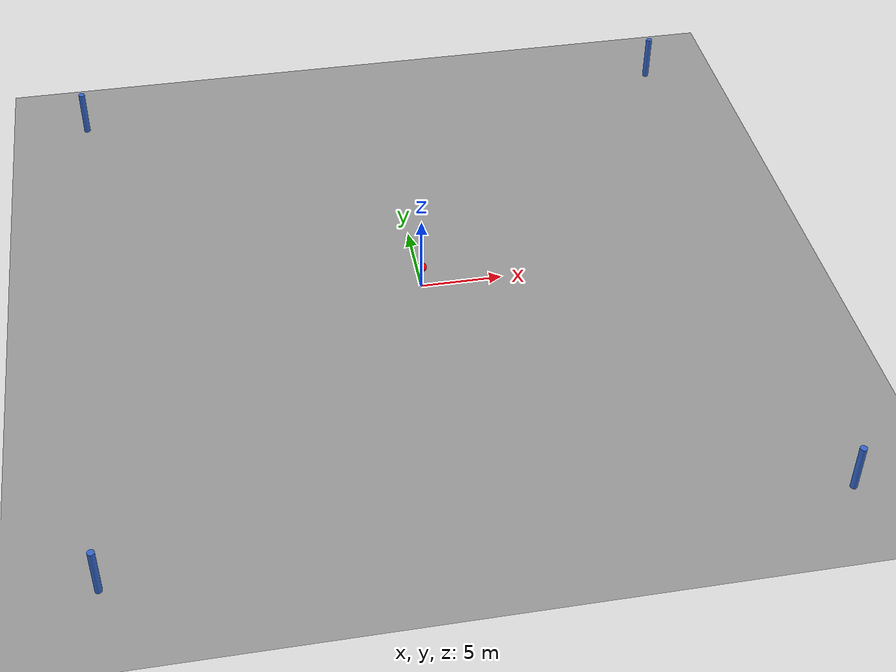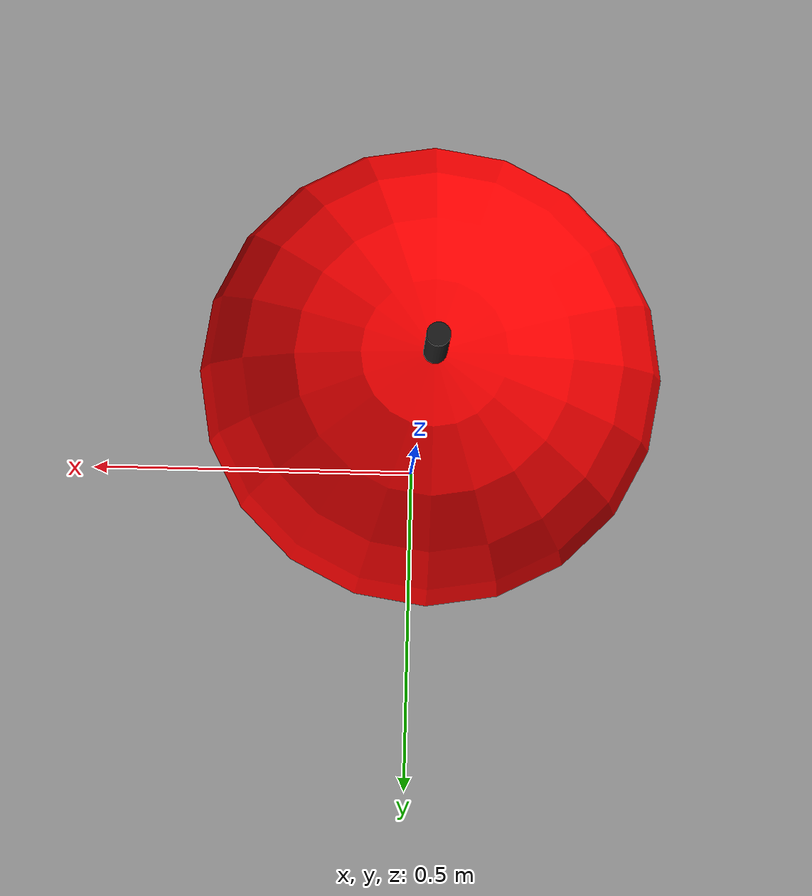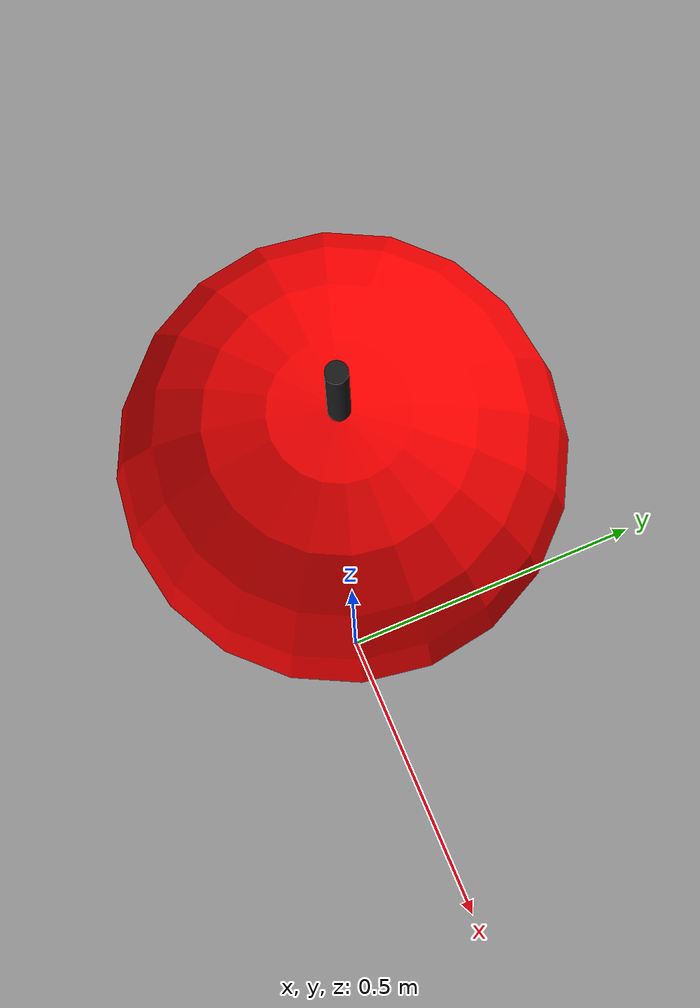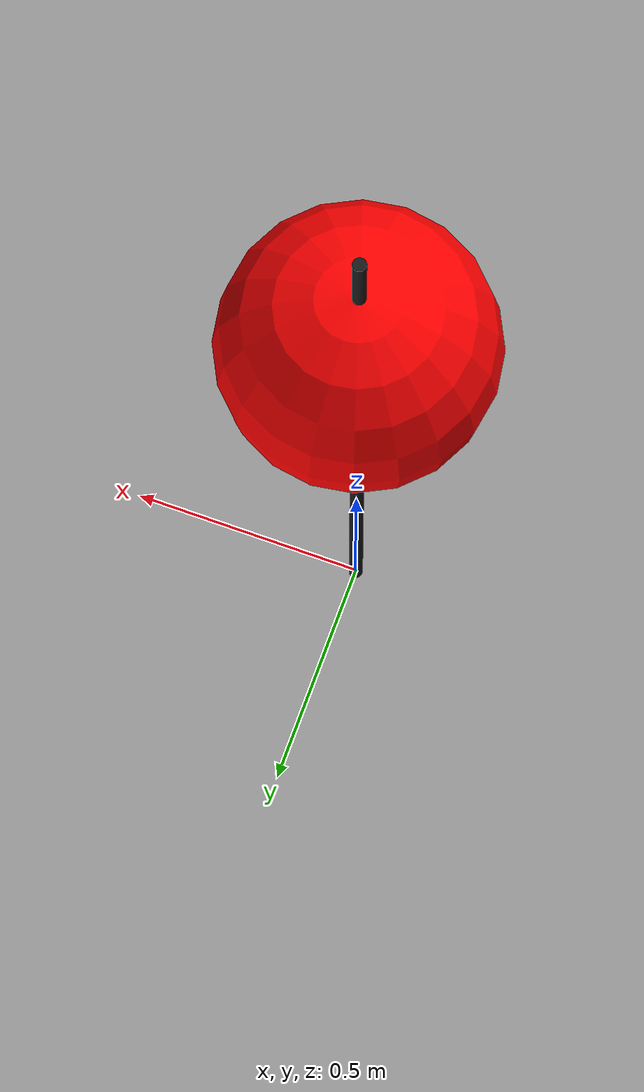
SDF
<?xml version="1.0" ?>
<sdf version="1.9">
  <world name="wirehawk_world_40x40_3m">

    <!-- Physics Configuration -->
    <physics name="1ms" type="ignored">
      <max_step_size>0.001</max_step_size>
      <real_time_factor>1.0</real_time_factor>
    </physics>
    <plugin filename="gz-sim-physics-system" name="gz::sim::systems::Physics"/>
    <plugin filename="gz-sim-user-commands-system" name="gz::sim::systems::UserCommands"/>
    <plugin filename="gz-sim-scene-broadcaster-system" name="gz::sim::systems::SceneBroadcaster"/>

    <!-- Environment & Lighting -->
    <scene>
      <ambient>0.5 0.5 0.5 1.0</ambient>
      <background>0.7 0.8 0.95 1.0</background>
      <grid>true</grid>
    </scene>

    <light type="directional" name="sun">
      <cast_shadows>true</cast_shadows>
      <pose>0 0 10 0 0 0</pose>
      <diffuse>0.8 0.8 0.8 1</diffuse>
      <direction>-0.5 0.1 -0.9</direction>
    </light>

    <!-- Ground Plane (Roof) -->
    <model name="roof">
      <static>true</static>
      <link name="link">
        <collision name="collision">
          <geometry><plane><normal>0 0 1</normal><size>50 50</size></plane></geometry>
        </collision>
        <visual name="visual">
          <geometry><plane><normal>0 0 1</normal><size>50 50</size></plane></geometry>
          <material>
            <ambient>0.6 0.6 0.6 1</ambient>
            <diffuse>0.6 0.6 0.6 1</diffuse>
          </material>
        </visual>
      </link>
    </model>

    <!-- Pillar 1 (Top Right) -->
    <model name="pillar_1">
      <static>true</static>
      <pose>20 20 1.5 0 0 0</pose>
      <link name="link">
        <visual name="visual">
          <geometry><cylinder><radius>0.2</radius><length>3.0</length></cylinder></geometry>
          <material><ambient>0.2 0.4 0.8 1</ambient><diffuse>0.2 0.4 0.8 1</diffuse></material>
        </visual>
      </link>
    </model>

    <!-- Pillar 2 (Bottom Right) -->
    <model name="pillar_2">
      <static>true</static>
      <pose>20 -20 1.5 0 0 0</pose>
      <link name="link">
        <visual name="visual">
          <geometry><cylinder><radius>0.2</radius><length>3.0</length></cylinder></geometry>
          <material><ambient>0.2 0.4 0.8 1</ambient><diffuse>0.2 0.4 0.8 1</diffuse></material>
        </visual>
      </link>
    </model>

    <!-- Pillar 3 (Bottom Left) -->
    <model name="pillar_3">
      <static>true</static>
      <pose>-20 -20 1.5 0 0 0</pose>
      <link name="link">
        <visual name="visual">
          <geometry><cylinder><radius>0.2</radius><length>3.0</length></cylinder></geometry>
          <material><ambient>0.2 0.4 0.8 1</ambient><diffuse>0.2 0.4 0.8 1</diffuse></material>
        </visual>
      </link>
    </model>

    <!-- Pillar 4 (Top Left) -->
    <model name="pillar_4">
      <static>true</static>
      <pose>-20 20 1.5 0 0 0</pose>
      <link name="link">
        <visual name="visual">
          <geometry><cylinder><radius>0.2</radius><length>3.0</length></cylinder></geometry>
          <material><ambient>0.2 0.4 0.8 1</ambient><diffuse>0.2 0.4 0.8 1</diffuse></material>
        </visual>
      </link>
    </model>

    <!-- 4 Visual Cable Models: Length 32m -->

    <!-- The Payload (Point Mass) -->

    <model name="cable_vis_0_0">
      <static>true</static>
      <link name="link">
        <visual name="v">
          <geometry><cylinder><radius>0.015</radius><length>4.0</length></cylinder></geometry>
          <material><ambient>0.1 0.1 0.1 1</ambient><diffuse>0.1 0.1 0.1 1</diffuse></material>
        </visual>
      </link>
    </model>

    <model name="cable_vis_0_1">
      <static>true</static>
      <link name="link">
        <visual name="v">
          <geometry><cylinder><radius>0.015</radius><length>4.0</length></cylinder></geometry>
          <material><ambient>0.1 0.1 0.1 1</ambient><diffuse>0.1 0.1 0.1 1</diffuse></material>
        </visual>
      </link>
    </model>

    <model name="cable_vis_0_2">
      <static>true</static>
      <link name="link">
        <visual name="v">
          <geometry><cylinder><radius>0.015</radius><length>4.0</length></cylinder></geometry>
          <material><ambient>0.1 0.1 0.1 1</ambient><diffuse>0.1 0.1 0.1 1</diffuse></material>
        </visual>
      </link>
    </model>

    <model name="cable_vis_0_3">
      <static>true</static>
      <link name="link">
        <visual name="v">
          <geometry><cylinder><radius>0.015</radius><length>4.0</length></cylinder></geometry>
          <material><ambient>0.1 0.1 0.1 1</ambient><diffuse>0.1 0.1 0.1 1</diffuse></material>
        </visual>
      </link>
    </model>

    <model name="cable_vis_0_4">
      <static>true</static>
      <link name="link">
        <visual name="v">
          <geometry><cylinder><radius>0.015</radius><length>4.0</length></cylinder></geometry>
          <material><ambient>0.1 0.1 0.1 1</ambient><diffuse>0.1 0.1 0.1 1</diffuse></material>
        </visual>
      </link>
    </model>

    <model name="cable_vis_0_5">
      <static>true</static>
      <link name="link">
        <visual name="v">
          <geometry><cylinder><radius>0.015</radius><length>4.0</length></cylinder></geometry>
          <material><ambient>0.1 0.1 0.1 1</ambient><diffuse>0.1 0.1 0.1 1</diffuse></material>
        </visual>
      </link>
    </model>

    <model name="cable_vis_0_6">
      <static>true</static>
      <link name="link">
        <visual name="v">
          <geometry><cylinder><radius>0.015</radius><length>4.0</length></cylinder></geometry>
          <material><ambient>0.1 0.1 0.1 1</ambient><diffuse>0.1 0.1 0.1 1</diffuse></material>
        </visual>
      </link>
    </model>

    <model name="cable_vis_0_7">
      <static>true</static>
      <link name="link">
        <visual name="v">
          <geometry><cylinder><radius>0.015</radius><length>4.0</length></cylinder></geometry>
          <material><ambient>0.1 0.1 0.1 1</ambient><diffuse>0.1 0.1 0.1 1</diffuse></material>
        </visual>
      </link>
    </model>

    <model name="cable_vis_0_8">
      <static>true</static>
      <link name="link">
        <visual name="v">
          <geometry><cylinder><radius>0.015</radius><length>4.0</length></cylinder></geometry>
          <material><ambient>0.1 0.1 0.1 1</ambient><diffuse>0.1 0.1 0.1 1</diffuse></material>
        </visual>
      </link>
    </model>

    <model name="cable_vis_0_9">
      <static>true</static>
      <link name="link">
        <visual name="v">
          <geometry><cylinder><radius>0.015</radius><length>4.0</length></cylinder></geometry>
          <material><ambient>0.1 0.1 0.1 1</ambient><diffuse>0.1 0.1 0.1 1</diffuse></material>
        </visual>
      </link>
    </model>

    <model name="cable_vis_0_10">
      <static>true</static>
      <link name="link">
        <visual name="v">
          <geometry><cylinder><radius>0.015</radius><length>4.0</length></cylinder></geometry>
          <material><ambient>0.1 0.1 0.1 1</ambient><diffuse>0.1 0.1 0.1 1</diffuse></material>
        </visual>
      </link>
    </model>

    <model name="cable_vis_0_11">
      <static>true</static>
      <link name="link">
        <visual name="v">
          <geometry><cylinder><radius>0.015</radius><length>4.0</length></cylinder></geometry>
          <material><ambient>0.1 0.1 0.1 1</ambient><diffuse>0.1 0.1 0.1 1</diffuse></material>
        </visual>
      </link>
    </model>

    <model name="cable_vis_0_12">
      <static>true</static>
      <link name="link">
        <visual name="v">
          <geometry><cylinder><radius>0.015</radius><length>4.0</length></cylinder></geometry>
          <material><ambient>0.1 0.1 0.1 1</ambient><diffuse>0.1 0.1 0.1 1</diffuse></material>
        </visual>
      </link>
    </model>

    <model name="cable_vis_0_13">
      <static>true</static>
      <link name="link">
        <visual name="v">
          <geometry><cylinder><radius>0.015</radius><length>4.0</length></cylinder></geometry>
          <material><ambient>0.1 0.1 0.1 1</ambient><diffuse>0.1 0.1 0.1 1</diffuse></material>
        </visual>
      </link>
    </model>

    <model name="cable_vis_0_14">
      <static>true</static>
      <link name="link">
        <visual name="v">
          <geometry><cylinder><radius>0.015</radius><length>4.0</length></cylinder></geometry>
          <material><ambient>0.1 0.1 0.1 1</ambient><diffuse>0.1 0.1 0.1 1</diffuse></material>
        </visual>
      </link>
    </model>

    <model name="cable_vis_0_15">
      <static>true</static>
      <link name="link">
        <visual name="v">
          <geometry><cylinder><radius>0.015</radius><length>4.0</length></cylinder></geometry>
          <material><ambient>0.1 0.1 0.1 1</ambient><diffuse>0.1 0.1 0.1 1</diffuse></material>
        </visual>
      </link>
    </model>

    <model name="cable_vis_0_16">
      <static>true</static>
      <link name="link">
        <visual name="v">
          <geometry><cylinder><radius>0.015</radius><length>4.0</length></cylinder></geometry>
          <material><ambient>0.1 0.1 0.1 1</ambient><diffuse>0.1 0.1 0.1 1</diffuse></material>
        </visual>
      </link>
    </model>

    <model name="cable_vis_0_17">
      <static>true</static>
      <link name="link">
        <visual name="v">
          <geometry><cylinder><radius>0.015</radius><length>4.0</length></cylinder></geometry>
          <material><ambient>0.1 0.1 0.1 1</ambient><diffuse>0.1 0.1 0.1 1</diffuse></material>
        </visual>
      </link>
    </model>

    <model name="cable_vis_0_18">
      <static>true</static>
      <link name="link">
        <visual name="v">
          <geometry><cylinder><radius>0.015</radius><length>4.0</length></cylinder></geometry>
          <material><ambient>0.1 0.1 0.1 1</ambient><diffuse>0.1 0.1 0.1 1</diffuse></material>
        </visual>
      </link>
    </model>

    <model name="cable_vis_0_19">
      <static>true</static>
      <link name="link">
        <visual name="v">
          <geometry><cylinder><radius>0.015</radius><length>4.0</length></cylinder></geometry>
          <material><ambient>0.1 0.1 0.1 1</ambient><diffuse>0.1 0.1 0.1 1</diffuse></material>
        </visual>
      </link>
    </model>

    <model name="cable_vis_0_20">
      <static>true</static>
      <link name="link">
        <visual name="v">
          <geometry><cylinder><radius>0.015</radius><length>4.0</length></cylinder></geometry>
          <material><ambient>0.1 0.1 0.1 1</ambient><diffuse>0.1 0.1 0.1 1</diffuse></material>
        </visual>
      </link>
    </model>

    <model name="cable_vis_0_21">
      <static>true</static>
      <link name="link">
        <visual name="v">
          <geometry><cylinder><radius>0.015</radius><length>4.0</length></cylinder></geometry>
          <material><ambient>0.1 0.1 0.1 1</ambient><diffuse>0.1 0.1 0.1 1</diffuse></material>
        </visual>
      </link>
    </model>

    <model name="cable_vis_1_0">
      <static>true</static>
      <link name="link">
        <visual name="v">
          <geometry><cylinder><radius>0.015</radius><length>4.0</length></cylinder></geometry>
          <material><ambient>0.1 0.1 0.1 1</ambient><diffuse>0.1 0.1 0.1 1</diffuse></material>
        </visual>
      </link>
    </model>

    <model name="cable_vis_1_1">
      <static>true</static>
      <link name="link">
        <visual name="v">
          <geometry><cylinder><radius>0.015</radius><length>4.0</length></cylinder></geometry>
          <material><ambient>0.1 0.1 0.1 1</ambient><diffuse>0.1 0.1 0.1 1</diffuse></material>
        </visual>
      </link>
    </model>

    <model name="cable_vis_1_2">
      <static>true</static>
      <link name="link">
        <visual name="v">
          <geometry><cylinder><radius>0.015</radius><length>4.0</length></cylinder></geometry>
          <material><ambient>0.1 0.1 0.1 1</ambient><diffuse>0.1 0.1 0.1 1</diffuse></material>
        </visual>
      </link>
    </model>

    <model name="cable_vis_1_3">
      <static>true</static>
      <link name="link">
        <visual name="v">
          <geometry><cylinder><radius>0.015</radius><length>4.0</length></cylinder></geometry>
          <material><ambient>0.1 0.1 0.1 1</ambient><diffuse>0.1 0.1 0.1 1</diffuse></material>
        </visual>
      </link>
    </model>

    <model name="cable_vis_1_4">
      <static>true</static>
      <link name="link">
        <visual name="v">
          <geometry><cylinder><radius>0.015</radius><length>4.0</length></cylinder></geometry>
          <material><ambient>0.1 0.1 0.1 1</ambient><diffuse>0.1 0.1 0.1 1</diffuse></material>
        </visual>
      </link>
    </model>

    <model name="cable_vis_1_5">
      <static>true</static>
      <link name="link">
        <visual name="v">
          <geometry><cylinder><radius>0.015</radius><length>4.0</length></cylinder></geometry>
          <material><ambient>0.1 0.1 0.1 1</ambient><diffuse>0.1 0.1 0.1 1</diffuse></material>
        </visual>
      </link>
    </model>

    <model name="cable_vis_1_6">
      <static>true</static>
      <link name="link">
        <visual name="v">
          <geometry><cylinder><radius>0.015</radius><length>4.0</length></cylinder></geometry>
          <material><ambient>0.1 0.1 0.1 1</ambient><diffuse>0.1 0.1 0.1 1</diffuse></material>
        </visual>
      </link>
    </model>

    <model name="cable_vis_1_7">
      <static>true</static>
      <link name="link">
        <visual name="v">
          <geometry><cylinder><radius>0.015</radius><length>4.0</length></cylinder></geometry>
          <material><ambient>0.1 0.1 0.1 1</ambient><diffuse>0.1 0.1 0.1 1</diffuse></material>
        </visual>
      </link>
    </model>

    <model name="cable_vis_1_8">
      <static>true</static>
      <link name="link">
        <visual name="v">
          <geometry><cylinder><radius>0.015</radius><length>4.0</length></cylinder></geometry>
          <material><ambient>0.1 0.1 0.1 1</ambient><diffuse>0.1 0.1 0.1 1</diffuse></material>
        </visual>
      </link>
    </model>

    <model name="cable_vis_1_9">
      <static>true</static>
      <link name="link">
        <visual name="v">
          <geometry><cylinder><radius>0.015</radius><length>4.0</length></cylinder></geometry>
          <material><ambient>0.1 0.1 0.1 1</ambient><diffuse>0.1 0.1 0.1 1</diffuse></material>
        </visual>
      </link>
    </model>

    <model name="cable_vis_1_10">
      <static>true</static>
      <link name="link">
        <visual name="v">
          <geometry><cylinder><radius>0.015</radius><length>4.0</length></cylinder></geometry>
          <material><ambient>0.1 0.1 0.1 1</ambient><diffuse>0.1 0.1 0.1 1</diffuse></material>
        </visual>
      </link>
    </model>

    <model name="cable_vis_1_11">
      <static>true</static>
      <link name="link">
        <visual name="v">
          <geometry><cylinder><radius>0.015</radius><length>4.0</length></cylinder></geometry>
          <material><ambient>0.1 0.1 0.1 1</ambient><diffuse>0.1 0.1 0.1 1</diffuse></material>
        </visual>
      </link>
    </model>

    <model name="cable_vis_1_12">
      <static>true</static>
      <link name="link">
        <visual name="v">
          <geometry><cylinder><radius>0.015</radius><length>4.0</length></cylinder></geometry>
          <material><ambient>0.1 0.1 0.1 1</ambient><diffuse>0.1 0.1 0.1 1</diffuse></material>
        </visual>
      </link>
    </model>

    <model name="cable_vis_1_13">
      <static>true</static>
      <link name="link">
        <visual name="v">
          <geometry><cylinder><radius>0.015</radius><length>4.0</length></cylinder></geometry>
          <material><ambient>0.1 0.1 0.1 1</ambient><diffuse>0.1 0.1 0.1 1</diffuse></material>
        </visual>
      </link>
    </model>

    <model name="cable_vis_1_14">
      <static>true</static>
      <link name="link">
        <visual name="v">
          <geometry><cylinder><radius>0.015</radius><length>4.0</length></cylinder></geometry>
          <material><ambient>0.1 0.1 0.1 1</ambient><diffuse>0.1 0.1 0.1 1</diffuse></material>
        </visual>
      </link>
    </model>

    <model name="cable_vis_1_15">
      <static>true</static>
      <link name="link">
        <visual name="v">
          <geometry><cylinder><radius>0.015</radius><length>4.0</length></cylinder></geometry>
          <material><ambient>0.1 0.1 0.1 1</ambient><diffuse>0.1 0.1 0.1 1</diffuse></material>
        </visual>
      </link>
    </model>

    <model name="cable_vis_1_16">
      <static>true</static>
      <link name="link">
        <visual name="v">
          <geometry><cylinder><radius>0.015</radius><length>4.0</length></cylinder></geometry>
          <material><ambient>0.1 0.1 0.1 1</ambient><diffuse>0.1 0.1 0.1 1</diffuse></material>
        </visual>
      </link>
    </model>

    <model name="cable_vis_1_17">
      <static>true</static>
      <link name="link">
        <visual name="v">
          <geometry><cylinder><radius>0.015</radius><length>4.0</length></cylinder></geometry>
          <material><ambient>0.1 0.1 0.1 1</ambient><diffuse>0.1 0.1 0.1 1</diffuse></material>
        </visual>
      </link>
    </model>

    <model name="cable_vis_1_18">
      <static>true</static>
      <link name="link">
        <visual name="v">
          <geometry><cylinder><radius>0.015</radius><length>4.0</length></cylinder></geometry>
          <material><ambient>0.1 0.1 0.1 1</ambient><diffuse>0.1 0.1 0.1 1</diffuse></material>
        </visual>
      </link>
    </model>

    <model name="cable_vis_1_19">
      <static>true</static>
      <link name="link">
        <visual name="v">
          <geometry><cylinder><radius>0.015</radius><length>4.0</length></cylinder></geometry>
          <material><ambient>0.1 0.1 0.1 1</ambient><diffuse>0.1 0.1 0.1 1</diffuse></material>
        </visual>
      </link>
    </model>

    <model name="cable_vis_1_20">
      <static>true</static>
      <link name="link">
        <visual name="v">
          <geometry><cylinder><radius>0.015</radius><length>4.0</length></cylinder></geometry>
          <material><ambient>0.1 0.1 0.1 1</ambient><diffuse>0.1 0.1 0.1 1</diffuse></material>
        </visual>
      </link>
    </model>

    <model name="cable_vis_1_21">
      <static>true</static>
      <link name="link">
        <visual name="v">
          <geometry><cylinder><radius>0.015</radius><length>4.0</length></cylinder></geometry>
          <material><ambient>0.1 0.1 0.1 1</ambient><diffuse>0.1 0.1 0.1 1</diffuse></material>
        </visual>
      </link>
    </model>

    <model name="cable_vis_2_0">
      <static>true</static>
      <link name="link">
        <visual name="v">
          <geometry><cylinder><radius>0.015</radius><length>4.0</length></cylinder></geometry>
          <material><ambient>0.1 0.1 0.1 1</ambient><diffuse>0.1 0.1 0.1 1</diffuse></material>
        </visual>
      </link>
    </model>

    <model name="cable_vis_2_1">
      <static>true</static>
      <link name="link">
        <visual name="v">
          <geometry><cylinder><radius>0.015</radius><length>4.0</length></cylinder></geometry>
          <material><ambient>0.1 0.1 0.1 1</ambient><diffuse>0.1 0.1 0.1 1</diffuse></material>
        </visual>
      </link>
    </model>

    <model name="cable_vis_2_2">
      <static>true</static>
      <link name="link">
        <visual name="v">
          <geometry><cylinder><radius>0.015</radius><length>4.0</length></cylinder></geometry>
          <material><ambient>0.1 0.1 0.1 1</ambient><diffuse>0.1 0.1 0.1 1</diffuse></material>
        </visual>
      </link>
    </model>

    <model name="cable_vis_2_3">
      <static>true</static>
      <link name="link">
        <visual name="v">
          <geometry><cylinder><radius>0.015</radius><length>4.0</length></cylinder></geometry>
          <material><ambient>0.1 0.1 0.1 1</ambient><diffuse>0.1 0.1 0.1 1</diffuse></material>
        </visual>
      </link>
    </model>

    <model name="cable_vis_2_4">
      <static>true</static>
      <link name="link">
        <visual name="v">
          <geometry><cylinder><radius>0.015</radius><length>4.0</length></cylinder></geometry>
          <material><ambient>0.1 0.1 0.1 1</ambient><diffuse>0.1 0.1 0.1 1</diffuse></material>
        </visual>
      </link>
    </model>

    <model name="cable_vis_2_5">
      <static>true</static>
      <link name="link">
        <visual name="v">
          <geometry><cylinder><radius>0.015</radius><length>4.0</length></cylinder></geometry>
          <material><ambient>0.1 0.1 0.1 1</ambient><diffuse>0.1 0.1 0.1 1</diffuse></material>
        </visual>
      </link>
    </model>

    <model name="cable_vis_2_6">
      <static>true</static>
      <link name="link">
        <visual name="v">
          <geometry><cylinder><radius>0.015</radius><length>4.0</length></cylinder></geometry>
          <material><ambient>0.1 0.1 0.1 1</ambient><diffuse>0.1 0.1 0.1 1</diffuse></material>
        </visual>
      </link>
    </model>

    <model name="cable_vis_2_7">
      <static>true</static>
      <link name="link">
        <visual name="v">
          <geometry><cylinder><radius>0.015</radius><length>4.0</length></cylinder></geometry>
          <material><ambient>0.1 0.1 0.1 1</ambient><diffuse>0.1 0.1 0.1 1</diffuse></material>
        </visual>
      </link>
    </model>

    <model name="cable_vis_2_8">
      <static>true</static>
      <link name="link">
        <visual name="v">
          <geometry><cylinder><radius>0.015</radius><length>4.0</length></cylinder></geometry>
          <material><ambient>0.1 0.1 0.1 1</ambient><diffuse>0.1 0.1 0.1 1</diffuse></material>
        </visual>
      </link>
    </model>

    <model name="cable_vis_2_9">
      <static>true</static>
      <link name="link">
        <visual name="v">
          <geometry><cylinder><radius>0.015</radius><length>4.0</length></cylinder></geometry>
          <material><ambient>0.1 0.1 0.1 1</ambient><diffuse>0.1 0.1 0.1 1</diffuse></material>
        </visual>
      </link>
    </model>

    <model name="cable_vis_2_10">
      <static>true</static>
      <link name="link">
        <visual name="v">
          <geometry><cylinder><radius>0.015</radius><length>4.0</length></cylinder></geometry>
          <material><ambient>0.1 0.1 0.1 1</ambient><diffuse>0.1 0.1 0.1 1</diffuse></material>
        </visual>
      </link>
    </model>

    <model name="cable_vis_2_11">
      <static>true</static>
      <link name="link">
        <visual name="v">
          <geometry><cylinder><radius>0.015</radius><length>4.0</length></cylinder></geometry>
          <material><ambient>0.1 0.1 0.1 1</ambient><diffuse>0.1 0.1 0.1 1</diffuse></material>
        </visual>
      </link>
    </model>

    <model name="cable_vis_2_12">
      <static>true</static>
      <link name="link">
        <visual name="v">
          <geometry><cylinder><radius>0.015</radius><length>4.0</length></cylinder></geometry>
          <material><ambient>0.1 0.1 0.1 1</ambient><diffuse>0.1 0.1 0.1 1</diffuse></material>
        </visual>
      </link>
    </model>

    <model name="cable_vis_2_13">
      <static>true</static>
      <link name="link">
        <visual name="v">
          <geometry><cylinder><radius>0.015</radius><length>4.0</length></cylinder></geometry>
          <material><ambient>0.1 0.1 0.1 1</ambient><diffuse>0.1 0.1 0.1 1</diffuse></material>
        </visual>
      </link>
    </model>

    <model name="cable_vis_2_14">
      <static>true</static>
      <link name="link">
        <visual name="v">
          <geometry><cylinder><radius>0.015</radius><length>4.0</length></cylinder></geometry>
          <material><ambient>0.1 0.1 0.1 1</ambient><diffuse>0.1 0.1 0.1 1</diffuse></material>
        </visual>
      </link>
    </model>

    <model name="cable_vis_2_15">
      <static>true</static>
      <link name="link">
        <visual name="v">
          <geometry><cylinder><radius>0.015</radius><length>4.0</length></cylinder></geometry>
          <material><ambient>0.1 0.1 0.1 1</ambient><diffuse>0.1 0.1 0.1 1</diffuse></material>
        </visual>
      </link>
    </model>

    <model name="cable_vis_2_16">
      <static>true</static>
      <link name="link">
        <visual name="v">
          <geometry><cylinder><radius>0.015</radius><length>4.0</length></cylinder></geometry>
          <material><ambient>0.1 0.1 0.1 1</ambient><diffuse>0.1 0.1 0.1 1</diffuse></material>
        </visual>
      </link>
    </model>

    <model name="cable_vis_2_17">
      <static>true</static>
      <link name="link">
        <visual name="v">
          <geometry><cylinder><radius>0.015</radius><length>4.0</length></cylinder></geometry>
          <material><ambient>0.1 0.1 0.1 1</ambient><diffuse>0.1 0.1 0.1 1</diffuse></material>
        </visual>
      </link>
    </model>

    <model name="cable_vis_2_18">
      <static>true</static>
      <link name="link">
        <visual name="v">
          <geometry><cylinder><radius>0.015</radius><length>4.0</length></cylinder></geometry>
          <material><ambient>0.1 0.1 0.1 1</ambient><diffuse>0.1 0.1 0.1 1</diffuse></material>
        </visual>
      </link>
    </model>

    <model name="cable_vis_2_19">
      <static>true</static>
      <link name="link">
        <visual name="v">
          <geometry><cylinder><radius>0.015</radius><length>4.0</length></cylinder></geometry>
          <material><ambient>0.1 0.1 0.1 1</ambient><diffuse>0.1 0.1 0.1 1</diffuse></material>
        </visual>
      </link>
    </model>

    <model name="cable_vis_2_20">
      <static>true</static>
      <link name="link">
        <visual name="v">
          <geometry><cylinder><radius>0.015</radius><length>4.0</length></cylinder></geometry>
          <material><ambient>0.1 0.1 0.1 1</ambient><diffuse>0.1 0.1 0.1 1</diffuse></material>
        </visual>
      </link>
    </model>

    <model name="cable_vis_2_21">
      <static>true</static>
      <link name="link">
        <visual name="v">
          <geometry><cylinder><radius>0.015</radius><length>4.0</length></cylinder></geometry>
          <material><ambient>0.1 0.1 0.1 1</ambient><diffuse>0.1 0.1 0.1 1</diffuse></material>
        </visual>
      </link>
    </model>

    <model name="cable_vis_3_0">
      <static>true</static>
      <link name="link">
        <visual name="v">
          <geometry><cylinder><radius>0.015</radius><length>4.0</length></cylinder></geometry>
          <material><ambient>0.1 0.1 0.1 1</ambient><diffuse>0.1 0.1 0.1 1</diffuse></material>
        </visual>
      </link>
    </model>

    <model name="cable_vis_3_1">
      <static>true</static>
      <link name="link">
        <visual name="v">
          <geometry><cylinder><radius>0.015</radius><length>4.0</length></cylinder></geometry>
          <material><ambient>0.1 0.1 0.1 1</ambient><diffuse>0.1 0.1 0.1 1</diffuse></material>
        </visual>
      </link>
    </model>

    <model name="cable_vis_3_2">
      <static>true</static>
      <link name="link">
        <visual name="v">
          <geometry><cylinder><radius>0.015</radius><length>4.0</length></cylinder></geometry>
          <material><ambient>0.1 0.1 0.1 1</ambient><diffuse>0.1 0.1 0.1 1</diffuse></material>
        </visual>
      </link>
    </model>

    <model name="cable_vis_3_3">
      <static>true</static>
      <link name="link">
        <visual name="v">
          <geometry><cylinder><radius>0.015</radius><length>4.0</length></cylinder></geometry>
          <material><ambient>0.1 0.1 0.1 1</ambient><diffuse>0.1 0.1 0.1 1</diffuse></material>
        </visual>
      </link>
    </model>

    <model name="cable_vis_3_4">
      <static>true</static>
      <link name="link">
        <visual name="v">
          <geometry><cylinder><radius>0.015</radius><length>4.0</length></cylinder></geometry>
          <material><ambient>0.1 0.1 0.1 1</ambient><diffuse>0.1 0.1 0.1 1</diffuse></material>
        </visual>
      </link>
    </model>

    <model name="cable_vis_3_5">
      <static>true</static>
      <link name="link">
        <visual name="v">
          <geometry><cylinder><radius>0.015</radius><length>4.0</length></cylinder></geometry>
          <material><ambient>0.1 0.1 0.1 1</ambient><diffuse>0.1 0.1 0.1 1</diffuse></material>
        </visual>
      </link>
    </model>

    <model name="cable_vis_3_6">
      <static>true</static>
      <link name="link">
        <visual name="v">
          <geometry><cylinder><radius>0.015</radius><length>4.0</length></cylinder></geometry>
          <material><ambient>0.1 0.1 0.1 1</ambient><diffuse>0.1 0.1 0.1 1</diffuse></material>
        </visual>
      </link>
    </model>

    <model name="cable_vis_3_7">
      <static>true</static>
      <link name="link">
        <visual name="v">
          <geometry><cylinder><radius>0.015</radius><length>4.0</length></cylinder></geometry>
          <material><ambient>0.1 0.1 0.1 1</ambient><diffuse>0.1 0.1 0.1 1</diffuse></material>
        </visual>
      </link>
    </model>

    <model name="cable_vis_3_8">
      <static>true</static>
      <link name="link">
        <visual name="v">
          <geometry><cylinder><radius>0.015</radius><length>4.0</length></cylinder></geometry>
          <material><ambient>0.1 0.1 0.1 1</ambient><diffuse>0.1 0.1 0.1 1</diffuse></material>
        </visual>
      </link>
    </model>

    <model name="cable_vis_3_9">
      <static>true</static>
      <link name="link">
        <visual name="v">
          <geometry><cylinder><radius>0.015</radius><length>4.0</length></cylinder></geometry>
          <material><ambient>0.1 0.1 0.1 1</ambient><diffuse>0.1 0.1 0.1 1</diffuse></material>
        </visual>
      </link>
    </model>

    <model name="cable_vis_3_10">
      <static>true</static>
      <link name="link">
        <visual name="v">
          <geometry><cylinder><radius>0.015</radius><length>4.0</length></cylinder></geometry>
          <material><ambient>0.1 0.1 0.1 1</ambient><diffuse>0.1 0.1 0.1 1</diffuse></material>
        </visual>
      </link>
    </model>

    <model name="cable_vis_3_11">
      <static>true</static>
      <link name="link">
        <visual name="v">
          <geometry><cylinder><radius>0.015</radius><length>4.0</length></cylinder></geometry>
          <material><ambient>0.1 0.1 0.1 1</ambient><diffuse>0.1 0.1 0.1 1</diffuse></material>
        </visual>
      </link>
    </model>

    <model name="cable_vis_3_12">
      <static>true</static>
      <link name="link">
        <visual name="v">
          <geometry><cylinder><radius>0.015</radius><length>4.0</length></cylinder></geometry>
          <material><ambient>0.1 0.1 0.1 1</ambient><diffuse>0.1 0.1 0.1 1</diffuse></material>
        </visual>
      </link>
    </model>

    <model name="cable_vis_3_13">
      <static>true</static>
      <link name="link">
        <visual name="v">
          <geometry><cylinder><radius>0.015</radius><length>4.0</length></cylinder></geometry>
          <material><ambient>0.1 0.1 0.1 1</ambient><diffuse>0.1 0.1 0.1 1</diffuse></material>
        </visual>
      </link>
    </model>

    <model name="cable_vis_3_14">
      <static>true</static>
      <link name="link">
        <visual name="v">
          <geometry><cylinder><radius>0.015</radius><length>4.0</length></cylinder></geometry>
          <material><ambient>0.1 0.1 0.1 1</ambient><diffuse>0.1 0.1 0.1 1</diffuse></material>
        </visual>
      </link>
    </model>

    <model name="cable_vis_3_15">
      <static>true</static>
      <link name="link">
        <visual name="v">
          <geometry><cylinder><radius>0.015</radius><length>4.0</length></cylinder></geometry>
          <material><ambient>0.1 0.1 0.1 1</ambient><diffuse>0.1 0.1 0.1 1</diffuse></material>
        </visual>
      </link>
    </model>

    <model name="cable_vis_3_16">
      <static>true</static>
      <link name="link">
        <visual name="v">
          <geometry><cylinder><radius>0.015</radius><length>4.0</length></cylinder></geometry>
          <material><ambient>0.1 0.1 0.1 1</ambient><diffuse>0.1 0.1 0.1 1</diffuse></material>
        </visual>
      </link>
    </model>

    <model name="cable_vis_3_17">
      <static>true</static>
      <link name="link">
        <visual name="v">
          <geometry><cylinder><radius>0.015</radius><length>4.0</length></cylinder></geometry>
          <material><ambient>0.1 0.1 0.1 1</ambient><diffuse>0.1 0.1 0.1 1</diffuse></material>
        </visual>
      </link>
    </model>

    <model name="cable_vis_3_18">
      <static>true</static>
      <link name="link">
        <visual name="v">
          <geometry><cylinder><radius>0.015</radius><length>4.0</length></cylinder></geometry>
          <material><ambient>0.1 0.1 0.1 1</ambient><diffuse>0.1 0.1 0.1 1</diffuse></material>
        </visual>
      </link>
    </model>

    <model name="cable_vis_3_19">
      <static>true</static>
      <link name="link">
        <visual name="v">
          <geometry><cylinder><radius>0.015</radius><length>4.0</length></cylinder></geometry>
          <material><ambient>0.1 0.1 0.1 1</ambient><diffuse>0.1 0.1 0.1 1</diffuse></material>
        </visual>
      </link>
    </model>

    <model name="cable_vis_3_20">
      <static>true</static>
      <link name="link">
        <visual name="v">
          <geometry><cylinder><radius>0.015</radius><length>4.0</length></cylinder></geometry>
          <material><ambient>0.1 0.1 0.1 1</ambient><diffuse>0.1 0.1 0.1 1</diffuse></material>
        </visual>
      </link>
    </model>

    <model name="cable_vis_3_21">
      <static>true</static>
      <link name="link">
        <visual name="v">
          <geometry><cylinder><radius>0.015</radius><length>4.0</length></cylinder></geometry>
          <material><ambient>0.1 0.1 0.1 1</ambient><diffuse>0.1 0.1 0.1 1</diffuse></material>
        </visual>
      </link>
    </model>

<model name="payload">
      <pose>0 0 1.5 0 0 0</pose>

      <link name="mass_link">
        <inertial>
          <mass>3.0</mass>
          <inertia><ixx>0.1</ixx><iyy>0.1</iyy><izz>0.1</izz><ixy>0</ixy><ixz>0</ixz><iyz>0</iyz></inertia>
        </inertial>
        <collision name="collision">
          <geometry><sphere><radius>0.3</radius></sphere></geometry>
        </collision>
        <visual name="visual">
          <geometry><sphere><radius>0.3</radius></sphere></geometry>
          <material>
            <ambient>1.0 0.0 0.0 1</ambient>
            <diffuse>1.0 0.0 0.0 1</diffuse>
          </material>
        </visual>
      </link>

      <plugin filename="libCableCatenaryPlugin.so" name="wirehawk::CableCatenaryPlugin">
        <linear_density>0.00258</linear_density>
        <axial_stiffness>98100.0</axial_stiffness>
        <max_tension>5886.0</max_tension>
        <payload_drag>50.0</payload_drag>
        <anchor_height>3.0</anchor_height>
        <gravity>9.80665</gravity>
              <slack_transition_strain>0.0001</slack_transition_strain>
      </plugin>

    </model>

  </world>
</sdf>
